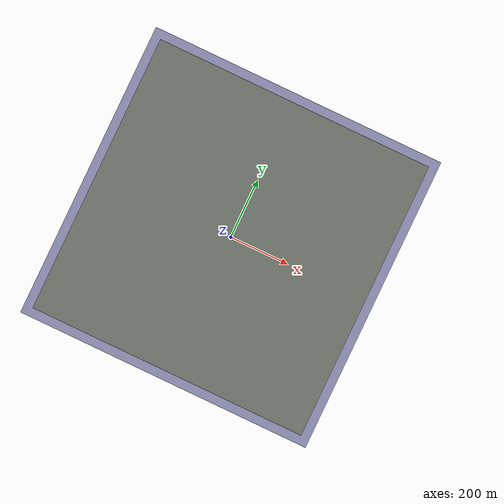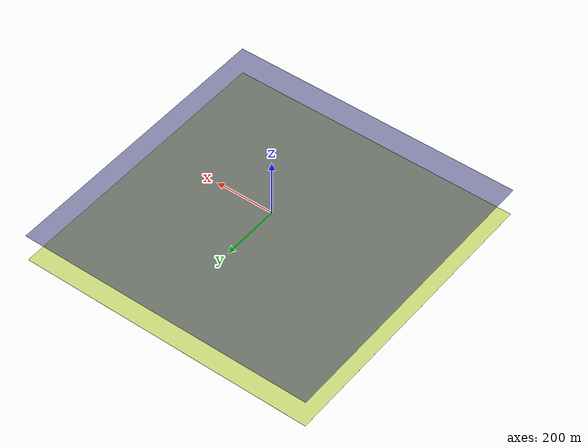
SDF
<?xml version="1.0"?>

<sdf version="1.5">
    <world name="ocean_world">

        <physics name="default_physics" default="true" type="ode">
            <max_step_size>0.001</max_step_size>
            <real_time_factor>1</real_time_factor>
            <real_time_update_rate>1000</real_time_update_rate>
            <ode>
            <solver>
                <type>quick</type>
                <iters>50</iters>
                <sor>0.5</sor>
            </solver>
            </ode>
        </physics>

        <scene>
            <sky>
                <clouds>
                    <speed>12</speed>
                </clouds>
            </sky>
            <shadows>1</shadows>
        </scene>

        <include>
            <uri>model://sun</uri>
        </include>

        <model name="water">
            <static>true</static>
            <pose>0 0 0 0 0 0</pose>
            <link name="water_link">
                <visual name="water_visual">
                    <transparency>0.5</transparency>
                    <cast_shadows>false</cast_shadows>
                    <geometry>
                        <box>
                            <size>1000 1000 0.01</size>
                        </box>
                    </geometry>
                    <material>
                        <ambient>0.2 0.2 0.4 1</ambient>
                        <diffuse>0.1 0.1 0.4 1</diffuse>
                        <specular>0.1 0.1 0.3 1</specular>
                        <emissive>0 0 0 1</emissive>
                    </material>
                </visual>
            </link>
        </model>

        <model name="ground">
            <pose>0 0 -100 0 0 0</pose>
            <static>true</static>
            <link name="ground_link">
                <visual name="ground_visual">
                    <cast_shadows>false</cast_shadows>
                    <geometry>
                        <box>
                            <size>1000 1000 .1</size>
                        </box>
                    </geometry>
                    <material>
                        <ambient>0.70 0.25 0.35 1</ambient>
                        <diffuse>0.80 0.86 0.48 1</diffuse>
                        <specular>0 0 0 1</specular>
                        <emissive>0 0 0 1</emissive>
                    </material>
                </visual>
                <collision name="ground_collision">
                    <geometry>
                        <box>
                            <size>1000 1000 .1</size>
                        </box>
                    </geometry>
                </collision>
            </link>
        </model>

    </world>
</sdf>
